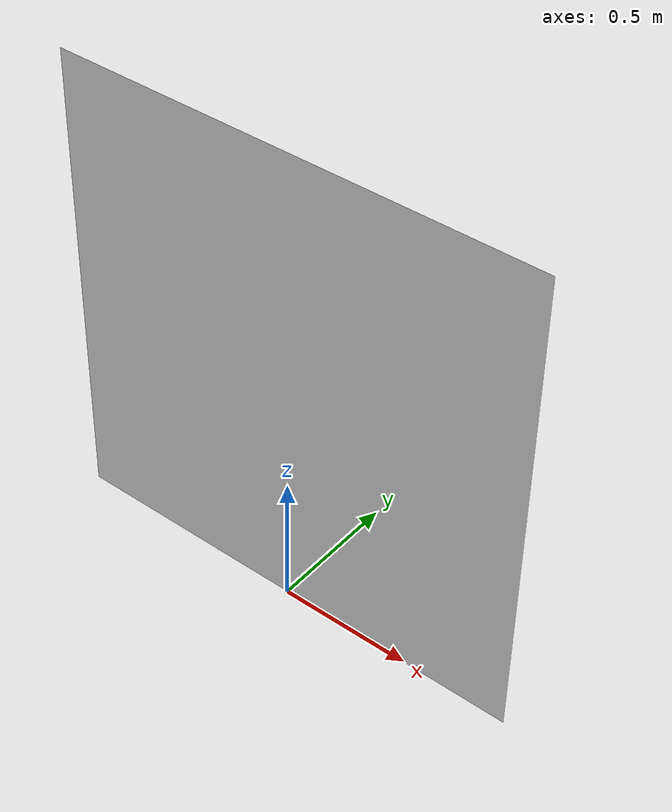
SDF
<?xml version='1.0'?>
<sdf version='1.4'>
  <model name="striped curtain">
    <static>true</static>
    <pose>0 0 0 0 0 0</pose>

    <link name="striped curtain">
      <visual name="curtain">
        <geometry>
          <mesh>
            <uri>model://curtain_striped/curtain_striped.dae</uri>
          </mesh>
        </geometry>
      </visual>
    </link>

  </model>
</sdf>
